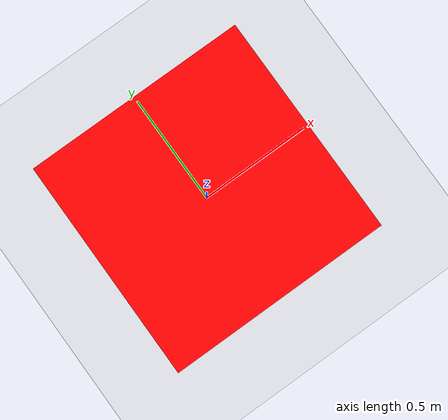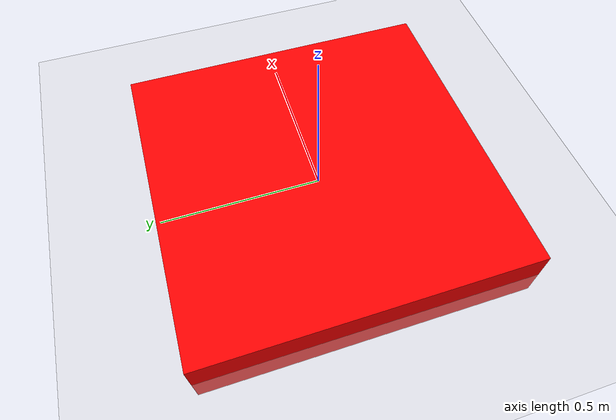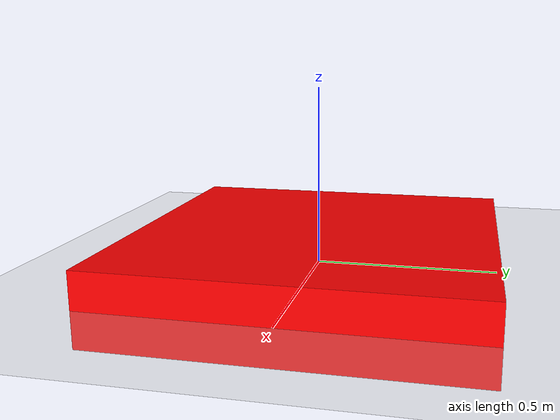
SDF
<?xml version="1.0" encoding="UTF-8" ?>
<sdf version="1.4">
  <world name="default">
    <include>
      <uri>model://ground_plane</uri>
    </include>
    <scene>
      <ambient>0.5 0.5 0.5 1</ambient>
      <background>0.5 0.5 0.5 1</background>
      <shadows>false</shadows>
    </scene>
    <physics type="ode">
      <gravity>0 0 -9.81</gravity>
      <ode>
        <solver>
          <type>quick</type>
          <iters>10</iters>
          <sor>1.3</sor>
        </solver>
        <constraints>
          <cfm>0.0</cfm>
          <erp>0.2</erp>
          <contact_max_correcting_vel>10</contact_max_correcting_vel>
          <contact_surface_layer>0.001</contact_surface_layer>
        </constraints>
      </ode>
      <real_time_update_rate>1000</real_time_update_rate>
      <max_step_size>0.001</max_step_size>
    </physics>
    <light type="directional" name="directional_light_2">
      <pose>0 0 20 0 0 0</pose>
      <diffuse>1 1 1 1</diffuse>
      <specular>1 1 1 1</specular>
      <attenuation>
        <range>300</range>
      </attenuation>
      <direction>-1 1 -1</direction>
      <cast_shadows>false</cast_shadows>
    </light>
    <light type="directional" name="directional_light_3">
      <pose>0 0 20 0 0 0</pose>
      <diffuse>1 1 1 1</diffuse>
      <specular>1 1 1 1</specular>
      <attenuation>
        <range>300</range>
      </attenuation>
      <direction>-1 -1 -1</direction>
      <cast_shadows>false</cast_shadows>
    </light>
    <model name="box">
      <link name="link">
		<pose>0 0 0 0 0 0</pose>
		<inertial>
			<mass>1</mass>
		</inertial>
        <collision name="collision">
          <geometry>
            <box>
              <size>1 1 0.2</size>
            </box>
          </geometry>
          <surface>
              <bounce><restitution_coefficient>0</restitution_coefficient></bounce>
          </surface>
        </collision>

        <visual name="visual">
          <geometry>
            <box>
              <size>1 1 0.2</size>
            </box>
          </geometry>
          <material>
			<ambient>1 0 0 1</ambient>
			<diffuse>1 0 0 1</diffuse>
			<specular>0.1 0.1 0.1 1</specular>
			<emissive>0 0 0 0</emissive>
		 </material>
        </visual>
        </link>
      <plugin name="model_push" filename="libmodel_push.so"/>
    </model>
  </world>
</sdf>
